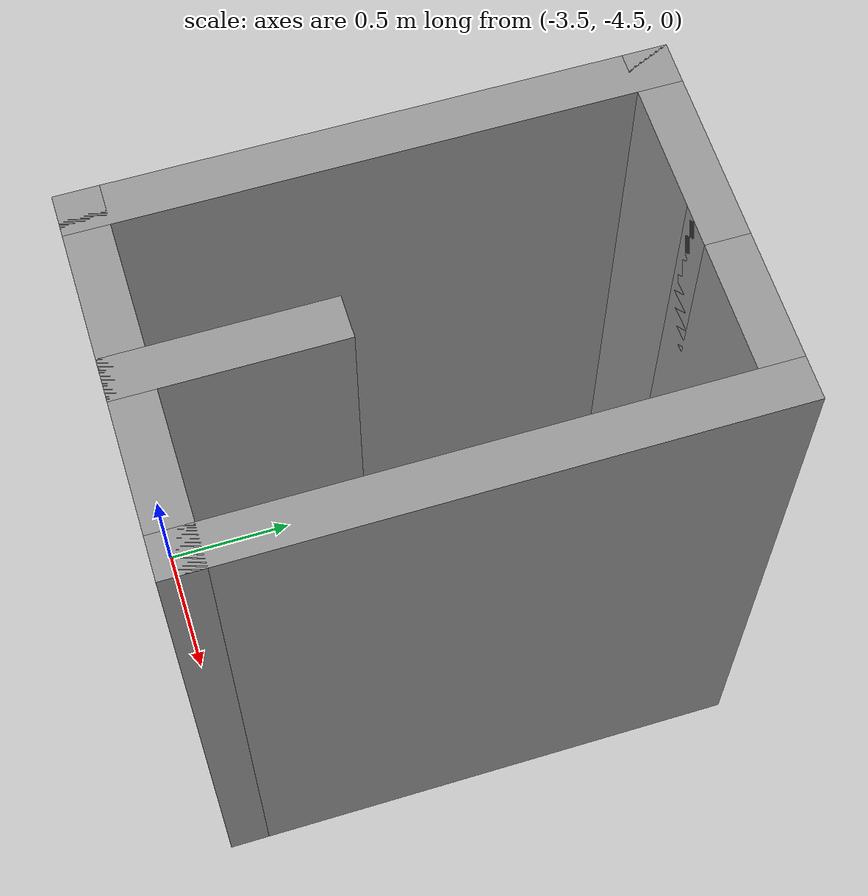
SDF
<?xml version='1.0'?>
<sdf version='1.7'>
  <model name='level2'>
    <pose>-1.79365 -2.28567 0 0 -0 0</pose>
    <link name='Wall_14'>
      <collision name='Wall_14_Collision'>
        <geometry>
          <box>
            <size>2 0.15 2.5</size>
          </box>
        </geometry>
        <pose>0 0 1.25 0 -0 0</pose>
      </collision>
      <visual name='Wall_14_Visual'>
        <pose>0 0 1.25 0 -0 0</pose>
        <geometry>
          <box>
            <size>2 0.15 2.5</size>
          </box>
        </geometry>
        <material>
          <script>
            <uri>file://media/materials/scripts/gazebo.material</uri>
            <name>Gazebo/Grey</name>
          </script>
          <ambient>1 1 1 1</ambient>
        </material>
        <meta>
          <layer>0</layer>
        </meta>
      </visual>
      <pose>-1.71865 -1.28567 0 0 -0 -1.5708</pose>
    </link>
    <link name='Wall_15'>
      <collision name='Wall_15_Collision'>
        <geometry>
          <box>
            <size>0.75 0.15 2.5</size>
          </box>
        </geometry>
        <pose>0 0 1.25 0 -0 0</pose>
      </collision>
      <visual name='Wall_15_Visual'>
        <pose>0 0 1.25 0 -0 0</pose>
        <geometry>
          <box>
            <size>0.75 0.15 2.5</size>
          </box>
        </geometry>
        <material>
          <script>
            <uri>file://media/materials/scripts/gazebo.material</uri>
            <name>Gazebo/Grey</name>
          </script>
          <ambient>1 1 1 1</ambient>
        </material>
        <meta>
          <layer>0</layer>
        </meta>
      </visual>
      <pose>-1.41865 -2.21067 0 0 -0 0</pose>
    </link>
    <link name='Wall_16'>
      <collision name='Wall_16_Collision'>
        <geometry>
          <box>
            <size>0.75 0.15 2.5</size>
          </box>
        </geometry>
        <pose>0 0 1.25 0 -0 0</pose>
      </collision>
      <visual name='Wall_16_Visual'>
        <pose>0 0 1.25 0 -0 0</pose>
        <geometry>
          <box>
            <size>0.75 0.15 2.5</size>
          </box>
        </geometry>
        <material>
          <script>
            <uri>file://media/materials/scripts/gazebo.material</uri>
            <name>Gazebo/Grey</name>
          </script>
          <ambient>1 1 1 1</ambient>
        </material>
        <meta>
          <layer>0</layer>
        </meta>
      </visual>
      <pose>-1.11865 -1.91067 0 0 -0 1.5708</pose>
    </link>
    <link name='Wall_18'>
      <collision name='Wall_18_Collision'>
        <geometry>
          <box>
            <size>0.75 0.15 2.5</size>
          </box>
        </geometry>
        <pose>0 0 1.25 0 -0 0</pose>
      </collision>
      <visual name='Wall_18_Visual'>
        <pose>0 0 1.25 0 -0 0</pose>
        <geometry>
          <box>
            <size>0.75 0.15 2.5</size>
          </box>
        </geometry>
        <material>
          <script>
            <uri>file://media/materials/scripts/gazebo.material</uri>
            <name>Gazebo/Grey</name>
          </script>
          <ambient>1 1 1 1</ambient>
        </material>
        <meta>
          <layer>0</layer>
        </meta>
      </visual>
      <pose>-1.41865 -0.360671 0 0 -0 0</pose>
    </link>
    <link name='Wall_19'>
      <collision name='Wall_19_Collision'>
        <geometry>
          <box>
            <size>0.75 0.15 2.5</size>
          </box>
        </geometry>
        <pose>0 0 1.25 0 -0 0</pose>
      </collision>
      <visual name='Wall_19_Visual'>
        <pose>0 0 1.25 0 -0 0</pose>
        <geometry>
          <box>
            <size>0.75 0.15 2.5</size>
          </box>
        </geometry>
        <material>
          <script>
            <uri>file://media/materials/scripts/gazebo.material</uri>
            <name>Gazebo/Grey</name>
          </script>
          <ambient>1 1 1 1</ambient>
        </material>
        <meta>
          <layer>0</layer>
        </meta>
      </visual>
      <pose>-0.818649 -0.360671 0 0 -0 0</pose>
    </link>
    <link name='Wall_20'>
      <collision name='Wall_20_Collision'>
        <geometry>
          <box>
            <size>2 0.15 2.5</size>
          </box>
        </geometry>
        <pose>0 0 1.25 0 -0 0</pose>
      </collision>
      <visual name='Wall_20_Visual'>
        <pose>0 0 1.25 0 -0 0</pose>
        <geometry>
          <box>
            <size>2 0.15 2.5</size>
          </box>
        </geometry>
        <material>
          <script>
            <uri>file://media/materials/scripts/gazebo.material</uri>
            <name>Gazebo/Grey</name>
          </script>
          <ambient>1 1 1 1</ambient>
        </material>
        <meta>
          <layer>0</layer>
        </meta>
      </visual>
      <pose>-0.518649 -1.28567 0 0 -0 -1.5708</pose>
    </link>
    <link name='Wall_21'>
      <collision name='Wall_21_Collision'>
        <geometry>
          <box>
            <size>0.75 0.15 2.5</size>
          </box>
        </geometry>
        <pose>0 0 1.25 0 -0 0</pose>
      </collision>
      <visual name='Wall_21_Visual'>
        <pose>0 0 1.25 0 -0 0</pose>
        <geometry>
          <box>
            <size>0.75 0.15 2.5</size>
          </box>
        </geometry>
        <material>
          <script>
            <uri>file://media/materials/scripts/gazebo.material</uri>
            <name>Gazebo/Grey</name>
          </script>
          <ambient>1 1 1 1</ambient>
        </material>
        <meta>
          <layer>0</layer>
        </meta>
      </visual>
      <pose>-0.818649 -2.21067 0 0 -0 3.14159</pose>
    </link>
    <static>1</static>
  </model>
</sdf>
